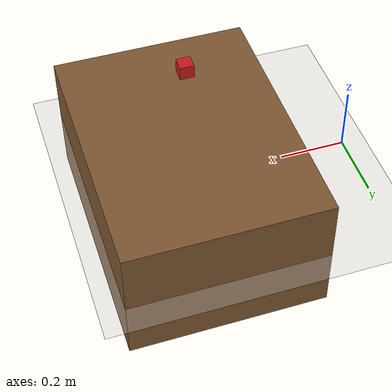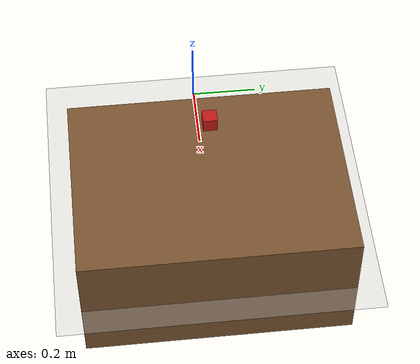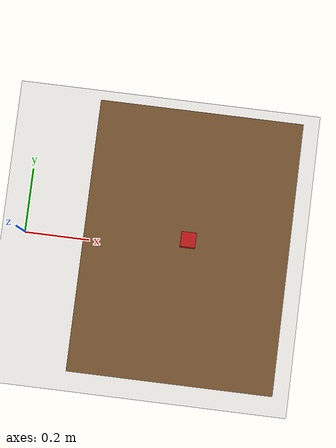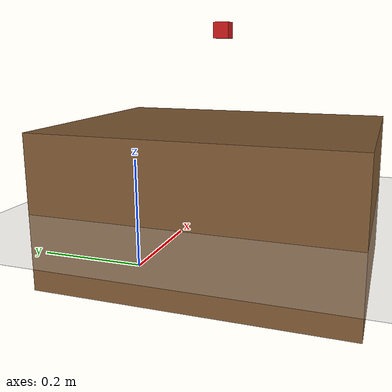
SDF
<?xml version="1.0" ?>
<sdf version="1.6">
  <world name="trainit_pick_cell">
    <include><uri>model://sun</uri></include>
    <include><uri>model://ground_plane</uri></include>

    <!-- a simple table the arm can pick from -->
    <model name="table">
      <static>true</static>
      <pose>0.5 0.0 0.0 0 0 0</pose>
      <link name="link">
        <collision name="c"><geometry><box><size>0.6 0.8 0.4</size></box></geometry></collision>
        <visual name="v"><geometry><box><size>0.6 0.8 0.4</size></box></geometry>
          <material><ambient>0.5 0.35 0.2 1</ambient><diffuse>0.5 0.35 0.2 1</diffuse></material>
        </visual>
      </link>
    </model>

    <!-- the graspable object (welded by the LinkAttacher bridge on /suction/on) -->
    <model name="red_box">
      <pose>0.5 0.0 0.44 0 0 0</pose>
      <link name="link">
        <inertial><mass>0.05</mass>
          <inertia><ixx>1e-4</ixx><iyy>1e-4</iyy><izz>1e-4</izz><ixy>0</ixy><ixz>0</ixz><iyz>0</iyz></inertia>
        </inertial>
        <collision name="c"><geometry><box><size>0.04 0.04 0.04</size></box></geometry></collision>
        <visual name="v"><geometry><box><size>0.04 0.04 0.04</size></box></geometry>
          <material><ambient>0.8 0.1 0.1 1</ambient><diffuse>0.8 0.1 0.1 1</diffuse></material>
        </visual>
      </link>
    </model>
  </world>
</sdf>
